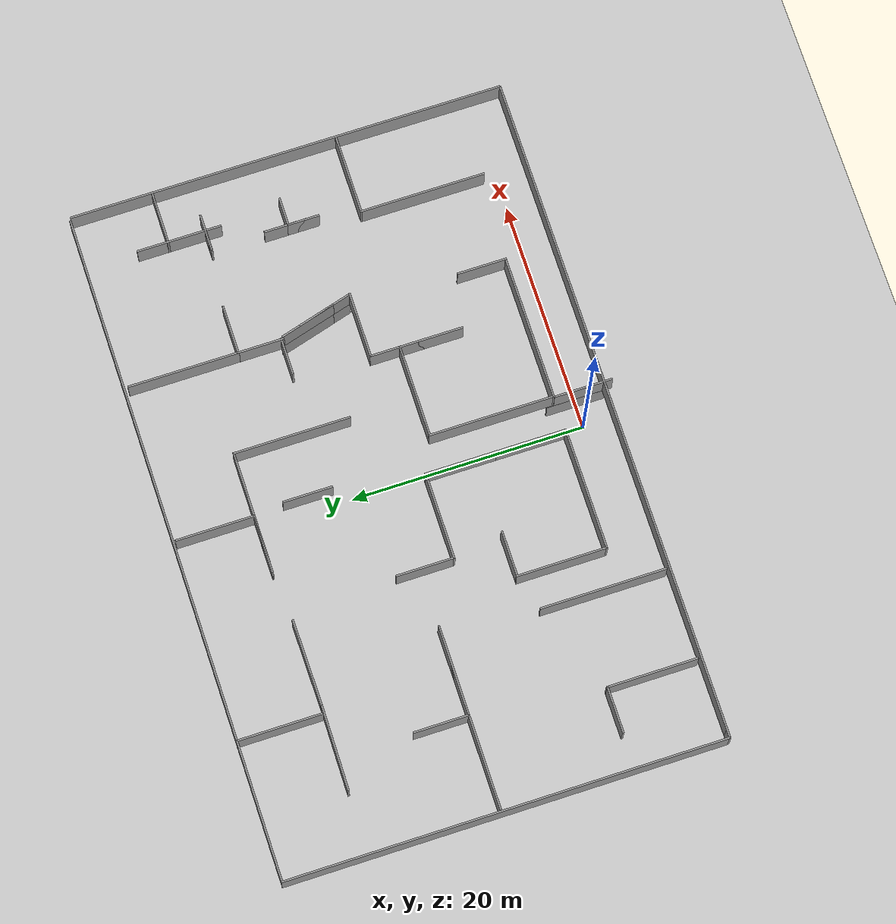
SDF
<sdf version="1.6">
 <world name="default">
  <model name="ground_plane">
   <static>1</static>
   <link name="link">
    <collision name="collision">
     <geometry><plane><normal>0 0 1</normal><size>100 100</size></plane></geometry>
     <surface><friction><ode><mu>100</mu><mu2>50</mu2></ode></friction></surface>
    </collision>
    <visual name="visual">
     <cast_shadows>0</cast_shadows>
     <geometry><plane><normal>0 0 1</normal><size>100 100</size></plane></geometry>
     <material>
      <script><uri>file://media/materials/scripts/gazebo.material</uri><name>Gazebo/Grey</name></script>
     </material>
    </visual>
   </link>
  </model>
  <model name="PaperTestRoom3_0">
   <pose>-0.1541 16.4874 2.5 0 -0 0</pose>
   <link name="Wall_12">
    <collision name="Wall_12_Collision">
     <geometry><box><size>7.36244 0.15 2.5</size></box></geometry>
     <pose>0 0 1.25 0 -0 0</pose>
    </collision>
    <visual name="Wall_12_Visual">
     <pose>0 0 1.25 0 -0 0</pose>
     <geometry><box><size>7.36244 0.15 2.5</size></box></geometry>
     <material>
      <script><uri>file://media/materials/scripts/gazebo.material</uri><name>Gazebo/Grey</name></script>
      <ambient>1 1 1 1</ambient>
     </material>
     <meta><layer>0</layer></meta>
    </visual>
    <pose>-19.953 11.4259 0 0 -0 -0.011282</pose>
   </link>
   <link name="Wall_16">
    <collision name="Wall_16_Collision">
     <geometry><box><size>7.75 0.15 2.5</size></box></geometry>
     <pose>0 0 1.25 0 -0 0</pose>
    </collision>
    <visual name="Wall_16_Visual">
     <pose>0 0 1.25 0 -0 0</pose>
     <geometry><box><size>7.75 0.15 2.5</size></box></geometry>
     <material>
      <script><uri>file://media/materials/scripts/gazebo.material</uri><name>Gazebo/Grey</name></script>
      <ambient>1 1 1 1</ambient>
     </material>
     <meta><layer>0</layer></meta>
    </visual>
    <pose>-22.0524 -14.5421 0 0 -0 1.5708</pose>
   </link>
   <link name="Wall_17">
    <collision name="Wall_17_Collision">
     <geometry><box><size>4 0.15 2.5</size></box></geometry>
     <pose>0 0 1.25 0 -0 0</pose>
    </collision>
    <visual name="Wall_17_Visual">
     <pose>0 0 1.25 0 -0 0</pose>
     <geometry><box><size>4 0.15 2.5</size></box></geometry>
     <material>
      <script><uri>file://media/materials/scripts/gazebo.material</uri><name>Gazebo/Grey</name></script>
      <ambient>1 1 1 1</ambient>
     </material>
     <meta><layer>0</layer></meta>
    </visual>
    <pose>-23.9774 -10.7421 0 0 -0 3.14159</pose>
   </link>
   <link name="Wall_19">
    <collision name="Wall_19_Collision">
     <geometry><box><size>10.75 0.15 2.5</size></box></geometry>
     <pose>0 0 1.25 0 -0 0</pose>
    </collision>
    <visual name="Wall_19_Visual">
     <pose>0 0 1.25 0 -0 0</pose>
     <geometry><box><size>10.75 0.15 2.5</size></box></geometry>
     <material>
      <script><uri>file://media/materials/scripts/gazebo.material</uri><name>Gazebo/Grey</name></script>
      <ambient>1 1 1 1</ambient>
     </material>
     <meta><layer>0</layer></meta>
    </visual>
    <pose>-14.3043 -13.0421 0 0 -0 1.5708</pose>
   </link>
   <link name="Wall_25">
    <collision name="Wall_25_Collision">
     <geometry><box><size>6 0.15 2.5</size></box></geometry>
     <pose>0 0 1.25 0 -0 0</pose>
    </collision>
    <visual name="Wall_25_Visual">
     <pose>0 0 1.25 0 -0 0</pose>
     <geometry><box><size>6 0.15 2.5</size></box></geometry>
     <material>
      <script><uri>file://media/materials/scripts/gazebo.material</uri><name>Gazebo/Grey</name></script>
      <ambient>1 1 1 1</ambient>
     </material>
     <meta><layer>0</layer></meta>
    </visual>
    <pose>-0.831101 -11.457 0 0 -0 1.5708</pose>
   </link>
   <link name="Wall_28">
    <collision name="Wall_28_Collision">
     <geometry><box><size>10.75 0.15 2.5</size></box></geometry>
     <pose>0 0 1.25 0 -0 0</pose>
    </collision>
    <visual name="Wall_28_Visual">
     <pose>0 0 1.25 0 -0 0</pose>
     <geometry><box><size>10.75 0.15 2.5</size></box></geometry>
     <material>
      <script><uri>file://media/materials/scripts/gazebo.material</uri><name>Gazebo/Grey</name></script>
      <ambient>1 1 1 1</ambient>
     </material>
     <meta><layer>0</layer></meta>
    </visual>
    <pose>2.16043 -9.0604 0 0 -0 1.5708</pose>
   </link>
   <link name="Wall_29">
    <collision name="Wall_29_Collision">
     <geometry><box><size>8 0.15 2.5</size></box></geometry>
     <pose>0 0 1.25 0 -0 0</pose>
    </collision>
    <visual name="Wall_29_Visual">
     <pose>0 0 1.25 0 -0 0</pose>
     <geometry><box><size>8 0.15 2.5</size></box></geometry>
     <material>
      <script><uri>file://media/materials/scripts/gazebo.material</uri><name>Gazebo/Grey</name></script>
      <ambient>1 1 1 1</ambient>
     </material>
     <meta><layer>0</layer></meta>
    </visual>
    <pose>6.08543 -3.7604 0 0 -0 0</pose>
   </link>
   <link name="Wall_30">
    <collision name="Wall_30_Collision">
     <geometry><box><size>5.5 0.15 2.5</size></box></geometry>
     <pose>0 0 1.25 0 -0 0</pose>
    </collision>
    <visual name="Wall_30_Visual">
     <pose>0 0 1.25 0 -0 0</pose>
     <geometry><box><size>5.5 0.15 2.5</size></box></geometry>
     <material>
      <script><uri>file://media/materials/scripts/gazebo.material</uri><name>Gazebo/Grey</name></script>
      <ambient>1 1 1 1</ambient>
     </material>
     <meta><layer>0</layer></meta>
    </visual>
    <pose>10.0104 -6.4354 0 0 -0 -1.5708</pose>
   </link>
   <link name="Wall_31">
    <collision name="Wall_31_Collision">
     <geometry><box><size>8 0.15 2.5</size></box></geometry>
     <pose>0 0 1.25 0 -0 0</pose>
    </collision>
    <visual name="Wall_31_Visual">
     <pose>0 0 1.25 0 -0 0</pose>
     <geometry><box><size>8 0.15 2.5</size></box></geometry>
     <material>
      <script><uri>file://media/materials/scripts/gazebo.material</uri><name>Gazebo/Grey</name></script>
      <ambient>1 1 1 1</ambient>
     </material>
     <meta><layer>0</layer></meta>
    </visual>
    <pose>10.0104 -5.1854 0 0 -0 1.5708</pose>
   </link>
   <link name="Wall_32">
    <collision name="Wall_32_Collision">
     <geometry><box><size>5.75 0.15 2.5</size></box></geometry>
     <pose>0 0 1.25 0 -0 0</pose>
    </collision>
    <visual name="Wall_32_Visual">
     <pose>0 0 1.25 0 -0 0</pose>
     <geometry><box><size>5.75 0.15 2.5</size></box></geometry>
     <material>
      <script><uri>file://media/materials/scripts/gazebo.material</uri><name>Gazebo/Grey</name></script>
      <ambient>1 1 1 1</ambient>
     </material>
     <meta><layer>0</layer></meta>
    </visual>
    <pose>12.8104 -1.2604 0 0 -0 0</pose>
   </link>
   <link name="Wall_34">
    <collision name="Wall_34_Collision">
     <geometry><box><size>12.5 0.15 2.5</size></box></geometry>
     <pose>0 0 1.25 0 -0 0</pose>
    </collision>
    <visual name="Wall_34_Visual">
     <pose>0 0 1.25 0 -0 0</pose>
     <geometry><box><size>12.5 0.15 2.5</size></box></geometry>
     <material>
      <script><uri>file://media/materials/scripts/gazebo.material</uri><name>Gazebo/Grey</name></script>
      <ambient>1 1 1 1</ambient>
     </material>
     <meta><layer>0</layer></meta>
    </visual>
    <pose>8.33543 -14.3604 0 0 -0 0</pose>
   </link>
   <link name="Wall_35">
    <collision name="Wall_35_Collision">
     <geometry><box><size>4.25 0.15 2.5</size></box></geometry>
     <pose>0 0 1.25 0 -0 0</pose>
    </collision>
    <visual name="Wall_35_Visual">
     <pose>0 0 1.25 0 -0 0</pose>
     <geometry><box><size>4.25 0.15 2.5</size></box></geometry>
     <material>
      <script><uri>file://media/materials/scripts/gazebo.material</uri><name>Gazebo/Grey</name></script>
      <ambient>1 1 1 1</ambient>
     </material>
     <meta><layer>0</layer></meta>
    </visual>
    <pose>14.5104 -12.3104 0 0 -0 1.5708</pose>
   </link>
   <link name="Wall_37">
    <collision name="Wall_37_Collision">
     <geometry><box><size>10.5 0.15 2.5</size></box></geometry>
     <pose>0 0 1.25 0 -0 0</pose>
    </collision>
    <visual name="Wall_37_Visual">
     <pose>0 0 1.25 0 -0 0</pose>
     <geometry><box><size>10.5 0.15 2.5</size></box></geometry>
     <material>
      <script><uri>file://media/materials/scripts/gazebo.material</uri><name>Gazebo/Grey</name></script>
      <ambient>1 1 1 1</ambient>
     </material>
     <meta><layer>0</layer></meta>
    </visual>
    <pose>-6.0061 -14.382 0 0 -0 3.14159</pose>
   </link>
   <link name="Wall_38">
    <collision name="Wall_38_Collision">
     <geometry><box><size>7.75 0.15 2.5</size></box></geometry>
     <pose>0 0 1.25 0 -0 0</pose>
    </collision>
    <visual name="Wall_38_Visual">
     <pose>0 0 1.25 0 -0 0</pose>
     <geometry><box><size>7.75 0.15 2.5</size></box></geometry>
     <material>
      <script><uri>file://media/materials/scripts/gazebo.material</uri><name>Gazebo/Grey</name></script>
      <ambient>1 1 1 1</ambient>
     </material>
     <meta><layer>0</layer></meta>
    </visual>
    <pose>-11.1811 -10.582 0 0 -0 1.5708</pose>
   </link>
   <link name="Wall_39">
    <collision name="Wall_39_Collision">
     <geometry><box><size>4 0.15 2.5</size></box></geometry>
     <pose>0 0 1.25 0 -0 0</pose>
    </collision>
    <visual name="Wall_39_Visual">
     <pose>0 0 1.25 0 -0 0</pose>
     <geometry><box><size>4 0.15 2.5</size></box></geometry>
     <material>
      <script><uri>file://media/materials/scripts/gazebo.material</uri><name>Gazebo/Grey</name></script>
      <ambient>1 1 1 1</ambient>
     </material>
     <meta><layer>0</layer></meta>
    </visual>
    <pose>-9.2561 -6.78202 0 0 -0 0</pose>
   </link>
   <link name="Wall_42">
    <collision name="Wall_42_Collision">
     <geometry><box><size>6.25 0.15 2.5</size></box></geometry>
     <pose>0 0 1.25 0 -0 0</pose>
    </collision>
    <visual name="Wall_42_Visual">
     <pose>0 0 1.25 0 -0 0</pose>
     <geometry><box><size>6.25 0.15 2.5</size></box></geometry>
     <material>
      <script><uri>file://media/materials/scripts/gazebo.material</uri><name>Gazebo/Grey</name></script>
      <ambient>1 1 1 1</ambient>
     </material>
     <meta><layer>0</layer></meta>
    </visual>
    <pose>-0.831101 -5.48202 0 0 -0 1.5708</pose>
   </link>
   <link name="Wall_43">
    <collision name="Wall_43_Collision">
     <geometry><box><size>7.5 0.15 2.5</size></box></geometry>
     <pose>0 0 1.25 0 -0 0</pose>
    </collision>
    <visual name="Wall_43_Visual">
     <pose>0 0 1.25 0 -0 0</pose>
     <geometry><box><size>7.5 0.15 2.5</size></box></geometry>
     <material>
      <script><uri>file://media/materials/scripts/gazebo.material</uri><name>Gazebo/Grey</name></script>
      <ambient>1 1 1 1</ambient>
     </material>
     <meta><layer>0</layer></meta>
    </visual>
    <pose>-4.5061 -2.43202 0 0 -0 3.14159</pose>
   </link>
   <link name="Wall_44">
    <collision name="Wall_44_Collision">
     <geometry><box><size>5 0.15 2.5</size></box></geometry>
     <pose>0 0 1.25 0 -0 0</pose>
    </collision>
    <visual name="Wall_44_Visual">
     <pose>0 0 1.25 0 -0 0</pose>
     <geometry><box><size>5 0.15 2.5</size></box></geometry>
     <material>
      <script><uri>file://media/materials/scripts/gazebo.material</uri><name>Gazebo/Grey</name></script>
      <ambient>1 1 1 1</ambient>
     </material>
     <meta><layer>0</layer></meta>
    </visual>
    <pose>-8.1811 -0.007024 0 0 -0 1.5708</pose>
   </link>
   <link name="Wall_47">
    <collision name="Wall_47_Collision">
     <geometry><box><size>37.25 0.15 2.5</size></box></geometry>
     <pose>0 0 1.25 0 -0 0</pose>
    </collision>
    <visual name="Wall_47_Visual">
     <pose>0 0 1.25 0 -0 0</pose>
     <geometry><box><size>37.25 0.15 2.5</size></box></geometry>
     <material>
      <script><uri>file://media/materials/scripts/gazebo.material</uri><name>Gazebo/Grey</name></script>
      <ambient>1 1 1 1</ambient>
     </material>
     <meta><layer>0</layer></meta>
    </visual>
    <pose>28.9541 -0.022609 0 0 -0 1.5708</pose>
   </link>
   <link name="Wall_49">
    <collision name="Wall_49_Collision">
     <geometry><box><size>7 0.15 2.5</size></box></geometry>
     <pose>0 0 1.25 0 -0 0</pose>
    </collision>
    <visual name="Wall_49_Visual">
     <pose>0 0 1.25 0 -0 0</pose>
     <geometry><box><size>7 0.15 2.5</size></box></geometry>
     <material>
      <script><uri>file://media/materials/scripts/gazebo.material</uri><name>Gazebo/Grey</name></script>
      <ambient>1 1 1 1</ambient>
     </material>
     <meta><layer>0</layer></meta>
    </visual>
    <pose>25.5161 -4.34601 0 0 -0 3.14159</pose>
   </link>
   <link name="Wall_5">
    <collision name="Wall_5_Collision">
     <geometry><box><size>0.75 0.15 2.5</size></box></geometry>
     <pose>0 0 1.25 0 -0 0</pose>
    </collision>
    <visual name="Wall_5_Visual">
     <pose>0 0 1.25 0 -0 0</pose>
     <geometry><box><size>0.75 0.15 2.5</size></box></geometry>
     <material>
      <script><uri>file://media/materials/scripts/gazebo.material</uri><name>Gazebo/Grey</name></script>
      <ambient>1 1 1 1</ambient>
     </material>
     <meta><layer>0</layer></meta>
    </visual>
    <pose>-28.6541 -18.6782 0 0 -0 3.14159</pose>
   </link>
   <link name="Wall_50">
    <collision name="Wall_50_Collision">
     <geometry><box><size>10.75 0.15 2.5</size></box></geometry>
     <pose>0 0 1.25 0 -0 0</pose>
    </collision>
    <visual name="Wall_50_Visual">
     <pose>0 0 1.25 0 -0 0</pose>
     <geometry><box><size>10.75 0.15 2.5</size></box></geometry>
     <material>
      <script><uri>file://media/materials/scripts/gazebo.material</uri><name>Gazebo/Grey</name></script>
      <ambient>1 1 1 1</ambient>
     </material>
     <meta><layer>0</layer></meta>
    </visual>
    <pose>22.0911 -9.64601 0 0 -0 -1.5708</pose>
   </link>
   <link name="Wall_52">
    <collision name="Wall_52_Collision">
     <geometry><box><size>4.5 0.15 2.5</size></box></geometry>
     <pose>0 0 1.25 0 -0 0</pose>
    </collision>
    <visual name="Wall_52_Visual">
     <pose>0 0 1.25 0 -0 0</pose>
     <geometry><box><size>4.5 0.15 2.5</size></box></geometry>
     <material>
      <script><uri>file://media/materials/scripts/gazebo.material</uri><name>Gazebo/Grey</name></script>
      <ambient>1 1 1 1</ambient>
     </material>
     <meta><layer>0</layer></meta>
    </visual>
    <pose>26.6525 11.5563 0 0 -0 3.14159</pose>
   </link>
   <link name="Wall_53">
    <collision name="Wall_53_Collision">
     <geometry><box><size>2.75 0.15 2.5</size></box></geometry>
     <pose>0 0 1.25 0 -0 0</pose>
    </collision>
    <visual name="Wall_53_Visual">
     <pose>0 0 1.25 0 -0 0</pose>
     <geometry><box><size>2.75 0.15 2.5</size></box></geometry>
     <material>
      <script><uri>file://media/materials/scripts/gazebo.material</uri><name>Gazebo/Grey</name></script>
      <ambient>1 1 1 1</ambient>
     </material>
     <meta><layer>0</layer></meta>
    </visual>
    <pose>24.4775 12.8563 0 0 -0 1.5708</pose>
   </link>
   <link name="Wall_54">
    <collision name="Wall_54_Collision">
     <geometry><box><size>7.25 0.15 2.5</size></box></geometry>
     <pose>0 0 1.25 0 -0 0</pose>
    </collision>
    <visual name="Wall_54_Visual">
     <pose>0 0 1.25 0 -0 0</pose>
     <geometry><box><size>7.25 0.15 2.5</size></box></geometry>
     <material>
      <script><uri>file://media/materials/scripts/gazebo.material</uri><name>Gazebo/Grey</name></script>
      <ambient>1 1 1 1</ambient>
     </material>
     <meta><layer>0</layer></meta>
    </visual>
    <pose>24.4775 10.6063 0 0 -0 -1.5708</pose>
   </link>
   <link name="Wall_57">
    <collision name="Wall_57_Collision">
     <geometry><box><size>2 0.15 2.5</size></box></geometry>
     <pose>0 0 1.25 0 -0 0</pose>
    </collision>
    <visual name="Wall_57_Visual">
     <pose>0 0 1.25 0 -0 0</pose>
     <geometry><box><size>2 0.15 2.5</size></box></geometry>
     <material>
      <script><uri>file://media/materials/scripts/gazebo.material</uri><name>Gazebo/Grey</name></script>
      <ambient>1 1 1 1</ambient>
     </material>
     <meta><layer>0</layer></meta>
    </visual>
    <pose>23.6283 8.34759 0 0 -0 3.14159</pose>
   </link>
   <link name="Wall_58">
    <collision name="Wall_58_Collision">
     <geometry><box><size>3.25 0.15 2.5</size></box></geometry>
     <pose>0 0 1.25 0 -0 0</pose>
    </collision>
    <visual name="Wall_58_Visual">
     <pose>0 0 1.25 0 -0 0</pose>
     <geometry><box><size>3.25 0.15 2.5</size></box></geometry>
     <material>
      <script><uri>file://media/materials/scripts/gazebo.material</uri><name>Gazebo/Grey</name></script>
      <ambient>1 1 1 1</ambient>
     </material>
     <meta><layer>0</layer></meta>
    </visual>
    <pose>24.2533 8.34759 0 0 -0 0</pose>
   </link>
   <link name="Wall_6">
    <collision name="Wall_6_Collision">
     <geometry><box><size>37.5 0.15 2.5</size></box></geometry>
     <pose>0 0 1.25 0 -0 0</pose>
    </collision>
    <visual name="Wall_6_Visual">
     <pose>0 0 1.25 0 -0 0</pose>
     <geometry><box><size>37.5 0.15 2.5</size></box></geometry>
     <material>
      <script><uri>file://media/materials/scripts/gazebo.material</uri><name>Gazebo/Grey</name></script>
      <ambient>1 1 1 1</ambient>
     </material>
     <meta><layer>0</layer></meta>
    </visual>
    <pose>-28.9541 -0.003198 0 0 -0 1.5708</pose>
   </link>
   <link name="Wall_60">
    <collision name="Wall_60_Collision">
     <geometry><box><size>9.5 0.15 2.5</size></box></geometry>
     <pose>0 0 1.25 0 -0 0</pose>
    </collision>
    <visual name="Wall_60_Visual">
     <pose>0 0 1.25 0 -0 0</pose>
     <geometry><box><size>9.5 0.15 2.5</size></box></geometry>
     <material>
      <script><uri>file://media/materials/scripts/gazebo.material</uri><name>Gazebo/Grey</name></script>
      <ambient>1 1 1 1</ambient>
     </material>
     <meta><layer>0</layer></meta>
    </visual>
    <pose>13.6263 13.5981 0 0 -0 -1.5708</pose>
   </link>
   <link name="Wall_61">
    <collision name="Wall_61_Collision">
     <geometry><box><size>4.25 0.15 2.5</size></box></geometry>
     <pose>0 0 1.25 0 -0 0</pose>
    </collision>
    <visual name="Wall_61_Visual">
     <pose>0 0 1.25 0 -0 0</pose>
     <geometry><box><size>4.25 0.15 2.5</size></box></geometry>
     <material>
      <script><uri>file://media/materials/scripts/gazebo.material</uri><name>Gazebo/Grey</name></script>
      <ambient>1 1 1 1</ambient>
     </material>
     <meta><layer>0</layer></meta>
    </visual>
    <pose>15.6763 8.92306 0 0 -0 0</pose>
   </link>
   <link name="Wall_64">
    <collision name="Wall_64_Collision">
     <geometry><box><size>6.75 0.15 2.5</size></box></geometry>
     <pose>0 0 1.25 0 -0 0</pose>
    </collision>
    <visual name="Wall_64_Visual">
     <pose>0 0 1.25 0 -0 0</pose>
     <geometry><box><size>6.75 0.15 2.5</size></box></geometry>
     <material>
      <script><uri>file://media/materials/scripts/gazebo.material</uri><name>Gazebo/Grey</name></script>
      <ambient>1 1 1 1</ambient>
     </material>
     <meta><layer>0</layer></meta>
    </visual>
    <pose>0.10616 15.1154 0 0 -0 -1.5708</pose>
   </link>
   <link name="Wall_65">
    <collision name="Wall_65_Collision">
     <geometry><box><size>5 0.15 2.5</size></box></geometry>
     <pose>0 0 1.25 0 -0 0</pose>
    </collision>
    <visual name="Wall_65_Visual">
     <pose>0 0 1.25 0 -0 0</pose>
     <geometry><box><size>5 0.15 2.5</size></box></geometry>
     <material>
      <script><uri>file://media/materials/scripts/gazebo.material</uri><name>Gazebo/Grey</name></script>
      <ambient>1 1 1 1</ambient>
     </material>
     <meta><layer>0</layer></meta>
    </visual>
    <pose>-2.31884 11.8154 0 0 -0 3.14159</pose>
   </link>
   <link name="Wall_66">
    <collision name="Wall_66_Collision">
     <geometry><box><size>10.5 0.15 2.5</size></box></geometry>
     <pose>0 0 1.25 0 -0 0</pose>
    </collision>
    <visual name="Wall_66_Visual">
     <pose>0 0 1.25 0 -0 0</pose>
     <geometry><box><size>10.5 0.15 2.5</size></box></geometry>
     <material>
      <script><uri>file://media/materials/scripts/gazebo.material</uri><name>Gazebo/Grey</name></script>
      <ambient>1 1 1 1</ambient>
     </material>
     <meta><layer>0</layer></meta>
    </visual>
    <pose>0.431161 11.8154 0 0 -0 0</pose>
   </link>
   <link name="Wall_67">
    <collision name="Wall_67_Collision">
     <geometry><box><size>10 0.15 2.5</size></box></geometry>
     <pose>0 0 1.25 0 -0 0</pose>
    </collision>
    <visual name="Wall_67_Visual">
     <pose>0 0 1.25 0 -0 0</pose>
     <geometry><box><size>10 0.15 2.5</size></box></geometry>
     <material>
      <script><uri>file://media/materials/scripts/gazebo.material</uri><name>Gazebo/Grey</name></script>
      <ambient>1 1 1 1</ambient>
     </material>
     <meta><layer>0</layer></meta>
    </visual>
    <pose>5.60616 6.89038 0 0 -0 -1.5708</pose>
   </link>
   <link name="Wall_69">
    <collision name="Wall_69_Collision">
     <geometry><box><size>15.75 0.15 2.5</size></box></geometry>
     <pose>0 0 1.25 0 -0 0</pose>
    </collision>
    <visual name="Wall_69_Visual">
     <pose>0 0 1.25 0 -0 0</pose>
     <geometry><box><size>15.75 0.15 2.5</size></box></geometry>
     <material>
      <script><uri>file://media/materials/scripts/gazebo.material</uri><name>Gazebo/Grey</name></script>
      <ambient>1 1 1 1</ambient>
     </material>
     <meta><layer>0</layer></meta>
    </visual>
    <pose>-20.9843 0.483346 0 0 -0 0</pose>
   </link>
   <link name="Wall_70">
    <collision name="Wall_70_Collision">
     <geometry><box><size>7.75 0.15 2.5</size></box></geometry>
     <pose>0 0 1.25 0 -0 0</pose>
    </collision>
    <visual name="Wall_70_Visual">
     <pose>0 0 1.25 0 -0 0</pose>
     <geometry><box><size>7.75 0.15 2.5</size></box></geometry>
     <material>
      <script><uri>file://media/materials/scripts/gazebo.material</uri><name>Gazebo/Grey</name></script>
      <ambient>1 1 1 1</ambient>
     </material>
     <meta><layer>0</layer></meta>
    </visual>
    <pose>-16.9843 0.483346 0 0 -0 3.14159</pose>
   </link>
   <link name="Wall_71">
    <collision name="Wall_71_Collision">
     <geometry><box><size>4.75 0.15 2.5</size></box></geometry>
     <pose>0 0 1.25 0 -0 0</pose>
    </collision>
    <visual name="Wall_71_Visual">
     <pose>0 0 1.25 0 -0 0</pose>
     <geometry><box><size>4.75 0.15 2.5</size></box></geometry>
     <material>
      <script><uri>file://media/materials/scripts/gazebo.material</uri><name>Gazebo/Grey</name></script>
      <ambient>1 1 1 1</ambient>
     </material>
     <meta><layer>0</layer></meta>
    </visual>
    <pose>-20.7843 2.78335 0 0 -0 1.5708</pose>
   </link>
   <link name="Wall_73">
    <collision name="Wall_73_Collision">
     <geometry><box><size>58 0.15 2.5</size></box></geometry>
     <pose>0 0 1.25 0 -0 0</pose>
    </collision>
    <visual name="Wall_73_Visual">
     <pose>0 0 1.25 0 -0 0</pose>
     <geometry><box><size>58 0.15 2.5</size></box></geometry>
     <material>
      <script><uri>file://media/materials/scripts/gazebo.material</uri><name>Gazebo/Grey</name></script>
      <ambient>1 1 1 1</ambient>
     </material>
     <meta><layer>0</layer></meta>
    </visual>
    <pose>-0.029105 -18.6782 0 0 -0 0</pose>
   </link>
   <link name="Wall_75">
    <collision name="Wall_75_Collision">
     <geometry><box><size>57.75 0.15 2.5</size></box></geometry>
     <pose>0 0 1.25 0 -0 0</pose>
    </collision>
    <visual name="Wall_75_Visual">
     <pose>0 0 1.25 0 -0 0</pose>
     <geometry><box><size>57.75 0.15 2.5</size></box></geometry>
     <material>
      <script><uri>file://media/materials/scripts/gazebo.material</uri><name>Gazebo/Grey</name></script>
      <ambient>1 1 1 1</ambient>
     </material>
     <meta><layer>0</layer></meta>
    </visual>
    <pose>-0.154105 18.6718 0 0 -0 0</pose>
   </link>
   <link name="Wall_77">
    <collision name="Wall_77_Collision">
     <geometry><box><size>7.38848 0.15 2.5</size></box></geometry>
     <pose>0 0 1.25 0 -0 0</pose>
    </collision>
    <visual name="Wall_77_Visual">
     <pose>0 0 1.25 0 -0 0</pose>
     <geometry><box><size>7.38848 0.15 2.5</size></box></geometry>
     <material>
      <script><uri>file://media/materials/scripts/gazebo.material</uri><name>Gazebo/Grey</name></script>
      <ambient>1 1 1 1</ambient>
     </material>
     <meta><layer>0</layer></meta>
    </visual>
    <pose>-12.728 11.4259 0 0 -0 0.011242</pose>
   </link>
   <link name="Wall_79">
    <collision name="Wall_79_Collision">
     <geometry><box><size>7.25 0.15 2.5</size></box></geometry>
     <pose>0 0 1.25 0 -0 0</pose>
    </collision>
    <visual name="Wall_79_Visual">
     <pose>0 0 1.25 0 -0 0</pose>
     <geometry><box><size>7.25 0.15 2.5</size></box></geometry>
     <material>
      <script><uri>file://media/materials/scripts/gazebo.material</uri><name>Gazebo/Grey</name></script>
      <ambient>1 1 1 1</ambient>
     </material>
     <meta><layer>0</layer></meta>
    </visual>
    <pose>-17.0746 15.1282 0 0 -0 1.5708</pose>
   </link>
   <link name="Wall_83">
    <collision name="Wall_83_Collision">
     <geometry><box><size>4.25 0.15 2.5</size></box></geometry>
     <pose>0 0 1.25 0 -0 0</pose>
    </collision>
    <visual name="Wall_83_Visual">
     <pose>0 0 1.25 0 -0 0</pose>
     <geometry><box><size>4.25 0.15 2.5</size></box></geometry>
     <material>
      <script><uri>file://media/materials/scripts/gazebo.material</uri><name>Gazebo/Grey</name></script>
      <ambient>1 1 1 1</ambient>
     </material>
     <meta><layer>0</layer></meta>
    </visual>
    <pose>0.487926 7.17144 0 0 -0 1.5708</pose>
   </link>
   <link name="Wall_85">
    <collision name="Wall_85_Collision">
     <geometry><box><size>4.75 0.15 2.5</size></box></geometry>
     <pose>0 0 1.25 0 -0 0</pose>
    </collision>
    <visual name="Wall_85_Visual">
     <pose>0 0 1.25 0 -0 0</pose>
     <geometry><box><size>4.75 0.15 2.5</size></box></geometry>
     <material>
      <script><uri>file://media/materials/scripts/gazebo.material</uri><name>Gazebo/Grey</name></script>
      <ambient>1 1 1 1</ambient>
     </material>
     <meta><layer>0</layer></meta>
    </visual>
    <pose>22.8497 1.42247 0 0 -0 -1.5708</pose>
   </link>
   <link name="Wall_86">
    <collision name="Wall_86_Collision">
     <geometry><box><size>2.75 0.15 2.5</size></box></geometry>
     <pose>0 0 1.25 0 -0 0</pose>
    </collision>
    <visual name="Wall_86_Visual">
     <pose>0 0 1.25 0 -0 0</pose>
     <geometry><box><size>2.75 0.15 2.5</size></box></geometry>
     <material>
      <script><uri>file://media/materials/scripts/gazebo.material</uri><name>Gazebo/Grey</name></script>
      <ambient>1 1 1 1</ambient>
     </material>
     <meta><layer>0</layer></meta>
    </visual>
    <pose>22.8497 0.422475 0 0 -0 1.5708</pose>
   </link>
   <link name="Wall_87">
    <collision name="Wall_87_Collision">
     <geometry><box><size>2.5 0.15 2.5</size></box></geometry>
     <pose>0 0 1.25 0 -0 0</pose>
    </collision>
    <visual name="Wall_87_Visual">
     <pose>0 0 1.25 0 -0 0</pose>
     <geometry><box><size>2.5 0.15 2.5</size></box></geometry>
     <material>
      <script><uri>file://media/materials/scripts/gazebo.material</uri><name>Gazebo/Grey</name></script>
      <ambient>1 1 1 1</ambient>
     </material>
     <meta><layer>0</layer></meta>
    </visual>
    <pose>24.0247 1.72248 0 0 -0 0</pose>
   </link>
   <link name="Wall_89">
    <collision name="Wall_89_Collision">
     <geometry><box><size>4 0.15 2.5</size></box></geometry>
     <pose>0 0 1.25 0 -0 0</pose>
    </collision>
    <visual name="Wall_89_Visual">
     <pose>0 0 1.25 0 -0 0</pose>
     <geometry><box><size>4 0.15 2.5</size></box></geometry>
     <material>
      <script><uri>file://media/materials/scripts/gazebo.material</uri><name>Gazebo/Grey</name></script>
      <ambient>1 1 1 1</ambient>
     </material>
     <meta><layer>0</layer></meta>
    </visual>
    <pose>13.6263 6.99806 0 0 -0 -1.5708</pose>
   </link>
   <link name="Wall_91">
    <collision name="Wall_91_Collision">
     <geometry><box><size>3.25 0.15 2.5</size></box></geometry>
     <pose>0 0 1.25 0 -0 0</pose>
    </collision>
    <visual name="Wall_91_Visual">
     <pose>0 0 1.25 0 -0 0</pose>
     <geometry><box><size>3.25 0.15 2.5</size></box></geometry>
     <material>
      <script><uri>file://media/materials/scripts/gazebo.material</uri><name>Gazebo/Grey</name></script>
      <ambient>1 1 1 1</ambient>
     </material>
     <meta><layer>0</layer></meta>
    </visual>
    <pose>12.1319 5.22905 0 0 -0 0</pose>
   </link>
   <static>1</static>
  </model>
  <model name="5mWall_2">
   <pose>1.95707 -0.430352 2.40618 0 -0 0</pose>
   <link name="Wall_0">
    <collision name="Wall_0_Collision">
     <geometry><box><size>5 0.15 2.5</size></box></geometry>
     <pose>0 0 1.25 0 -0 0</pose>
    </collision>
    <visual name="Wall_0_Visual">
     <pose>0 0 1.25 0 -0 0</pose>
     <geometry><box><size>5 0.15 2.5</size></box></geometry>
     <material>
      <script><uri>file://media/materials/scripts/gazebo.material</uri><name>Gazebo/Grey</name></script>
      <ambient>1 1 1 1</ambient>
     </material>
     <meta><layer>0</layer></meta>
    </visual>
    <pose>0 -0 0 0 -0 1.5708</pose>
   </link>
   <static>1</static>
  </model>
  <model name="5mWall_3_clone">
   <pose>14.7824 17.559 2.48215 0 -0 0.2739</pose>
   <link name="Wall_0">
    <collision name="Wall_0_Collision">
     <geometry><box><size>5 0.15 2.5</size></box></geometry>
     <pose>0 0 1.25 0 -0 0</pose>
    </collision>
    <visual name="Wall_0_Visual">
     <pose>0 0 1.25 0 -0 0</pose>
     <geometry><box><size>5 0.15 2.5</size></box></geometry>
     <material>
      <script><uri>file://media/materials/scripts/gazebo.material</uri><name>Gazebo/Grey</name></script>
      <ambient>1 1 1 1</ambient>
     </material>
     <meta><layer>0</layer></meta>
    </visual>
    <pose>0 -0 0 0 -0 1.5708</pose>
   </link>
   <static>1</static>
  </model>
  <model name="5mWall_3_clone_clone">
   <pose>14.3102 19.2453 0 0 -0 0.2739</pose>
   <link name="Wall_0">
    <collision name="Wall_0_Collision">
     <geometry><box><size>5 0.15 2.5</size></box></geometry>
     <pose>0 0 1.25 0 -0 0</pose>
    </collision>
    <visual name="Wall_0_Visual">
     <pose>0 0 1.25 0 -0 0</pose>
     <geometry><box><size>5 0.15 2.5</size></box></geometry>
     <material>
      <script><uri>file://media/materials/scripts/gazebo.material</uri><name>Gazebo/Grey</name></script>
      <ambient>1 1 1 1</ambient>
     </material>
     <meta><layer>0</layer></meta>
    </visual>
    <pose>0 -0 0 0 -0 1.5708</pose>
   </link>
   <static>1</static>
  </model>
  <model name="5mWall_3_clone_clone_0">
   <pose>14.7707 17.6611 0 0 -0 0.2739</pose>
   <link name="Wall_0">
    <collision name="Wall_0_Collision">
     <geometry><box><size>5 0.15 2.5</size></box></geometry>
     <pose>0 0 1.25 0 -0 0</pose>
    </collision>
    <visual name="Wall_0_Visual">
     <pose>0 0 1.25 0 -0 0</pose>
     <geometry><box><size>5 0.15 2.5</size></box></geometry>
     <material>
      <script><uri>file://media/materials/scripts/gazebo.material</uri><name>Gazebo/Grey</name></script>
      <ambient>1 1 1 1</ambient>
     </material>
     <meta><layer>0</layer></meta>
    </visual>
    <pose>0 -0 0 0 -0 1.5708</pose>
   </link>
   <static>1</static>
  </model>
  <model name="5mWall_3_clone_clone_1">
   <pose>14.3167 19.2037 2.48215 0 -0 0.2739</pose>
   <link name="Wall_0">
    <collision name="Wall_0_Collision">
     <geometry><box><size>5 0.15 2.5</size></box></geometry>
     <pose>0 0 1.25 0 -0 0</pose>
    </collision>
    <visual name="Wall_0_Visual">
     <pose>0 0 1.25 0 -0 0</pose>
     <geometry><box><size>5 0.15 2.5</size></box></geometry>
     <material>
      <script><uri>file://media/materials/scripts/gazebo.material</uri><name>Gazebo/Grey</name></script>
      <ambient>1 1 1 1</ambient>
     </material>
     <meta><layer>0</layer></meta>
    </visual>
    <pose>0 -0 0 0 -0 1.5708</pose>
   </link>
   <static>1</static>
  </model>
  <model name="5mWall_2_clone">
   <pose>1.95331 0.14835 0 0 -0 0</pose>
   <link name="Wall_0">
    <collision name="Wall_0_Collision">
     <geometry><box><size>5 0.15 2.5</size></box></geometry>
     <pose>0 0 1.25 0 -0 0</pose>
    </collision>
    <visual name="Wall_0_Visual">
     <pose>0 0 1.25 0 -0 0</pose>
     <geometry><box><size>5 0.15 2.5</size></box></geometry>
     <material>
      <script><uri>file://media/materials/scripts/gazebo.material</uri><name>Gazebo/Grey</name></script>
      <ambient>1 1 1 1</ambient>
     </material>
     <meta><layer>0</layer></meta>
    </visual>
    <pose>0 -0 0 0 -0 1.5708</pose>
   </link>
   <static>1</static>
  </model>
 </world>
</sdf>
